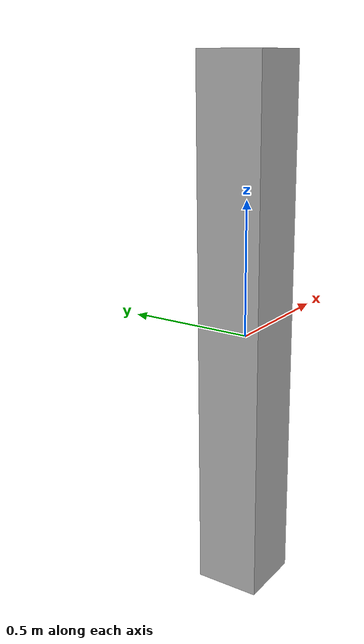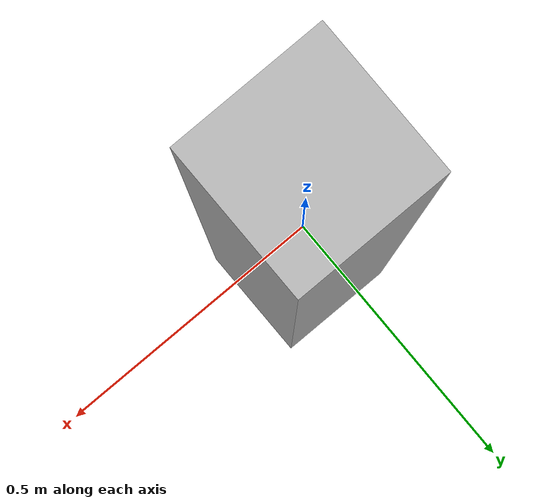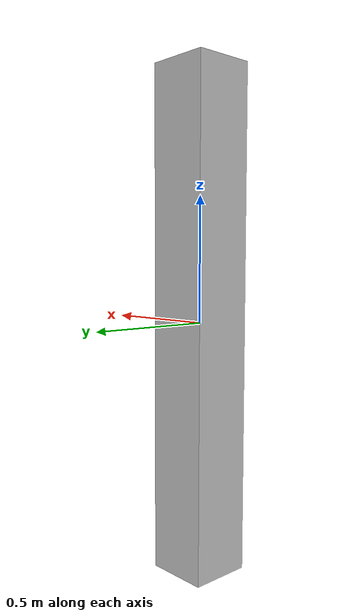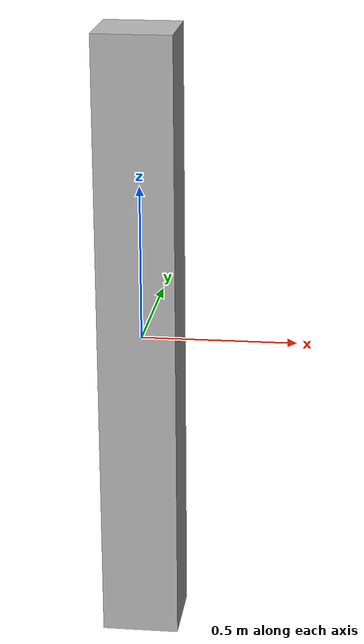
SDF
<?xml version='1.0'?>
<sdf version='1.5'>
  <model name="obstacle">
        <static>true</static>

<link name="obstacle">
      <pose>0 0 0 0 0 0</pose>

        <inertial>
          <inertia>
            <ixx>0.0008330</ixx>
            <ixy>0</ixy>
            <ixz>0</ixz>
            <iyy>0.0370</iyy>
            <iyz>0</iyz>
            <izz>0.0370</izz>
          </inertia>
          <mass>0.5</mass>
        </inertial>

        <collision name="my_collision">
            <geometry>
             <box>
             <size>1.0 0.05 0.05</size>
             </box>
            </geometry>

        </collision>

        <visual name="my_visual">
            <geometry>
             <box>
             <size>0.25 0.25 2.0</size>
             </box>
            </geometry>
        </visual>
    </link>

  </model>
</sdf>
